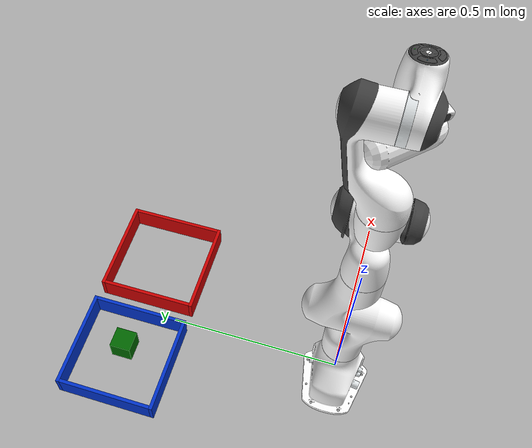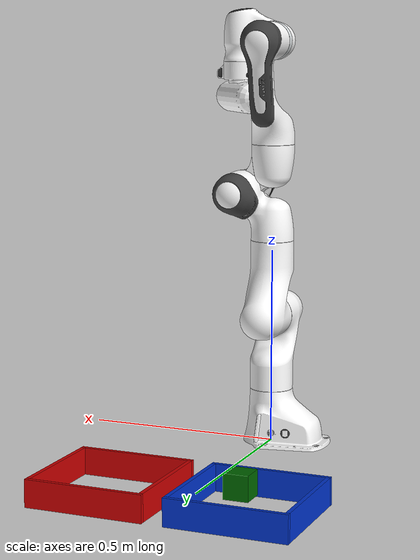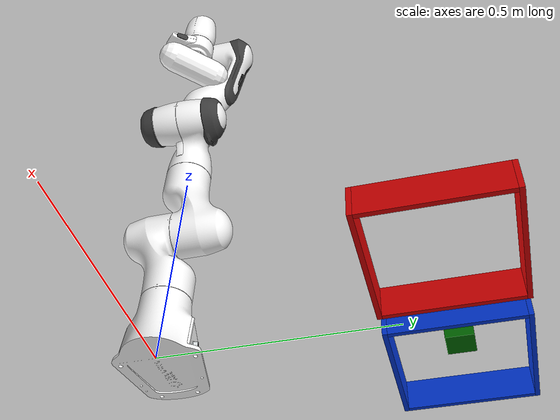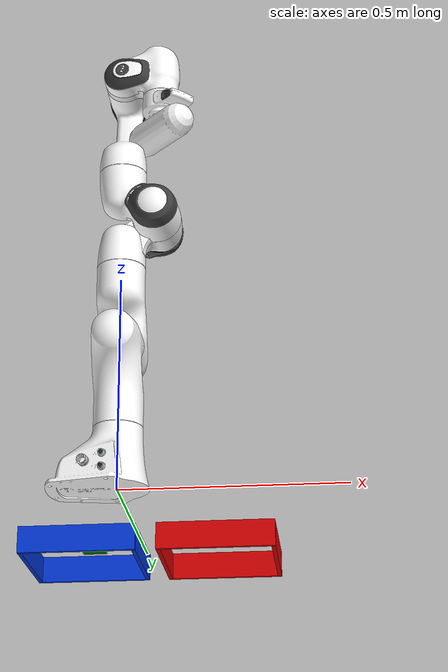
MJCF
<!-- Credit: adapted from Mujoco Menagerie -->
<mujoco model="panda">
  <compiler angle="radian" meshdir="franka_emika_panda/assets" autolimits="true"/>

  <option integrator="implicitfast" impratio="10"/>

  <default>
    <default class="panda">
      <joint armature="0.1" damping="5" axis="0 0 1" range="-2.8973 2.8973"/>
      <general dyntype="none" biastype="affine" ctrlrange="-2.8973 2.8973" forcerange="-87 87"/>
      <default class="finger">
        <joint axis="0 1 0" type="slide" range="0 0.05"/>
      </default>

      <default class="visual">
        <geom type="mesh" contype="0" conaffinity="0" group="2"/>
      </default>
      <default class="collision">
        <geom type="mesh" group="3"/>
        <default class="finger_collision">
          <geom type="box" size="0.015 0.005 0.04" pos="0 0.0055 0.035" friction="10 0.005 0.0001"/>
        </default>
      </default>
    </default>
  </default>

  <asset>
    <!-- Visual meshes -->
    <mesh file="link0_0.obj"/>
    <mesh file="link0_1.obj"/>
    <mesh file="link0_2.obj"/>
    <mesh file="link0_3.obj"/>
    <mesh file="link0_4.obj"/>
    <mesh file="link0_5.obj"/>
    <mesh file="link0_7.obj"/>
    <mesh file="link0_8.obj"/>
    <mesh file="link0_9.obj"/>
    <mesh file="link0_10.obj"/>
    <mesh file="link0_11.obj"/>
    <mesh file="link1.obj"/>
    <mesh file="link2.obj"/>
    <mesh file="link3_0.obj"/>
    <mesh file="link3_1.obj"/>
    <mesh file="link3_2.obj"/>
    <mesh file="link3_3.obj"/>
    <mesh file="link4_0.obj"/>
    <mesh file="link4_1.obj"/>
    <mesh file="link4_2.obj"/>
    <mesh file="link4_3.obj"/>
    <mesh file="link5_0.obj"/>
    <mesh file="link5_1.obj"/>
    <mesh file="link5_2.obj"/>
    <mesh file="link6_0.obj"/>
    <mesh file="link6_1.obj"/>
    <mesh file="link6_2.obj"/>
    <mesh file="link6_3.obj"/>
    <mesh file="link6_4.obj"/>
    <mesh file="link6_5.obj"/>
    <mesh file="link6_6.obj"/>
    <mesh file="link6_7.obj"/>
    <mesh file="link6_8.obj"/>
    <mesh file="link6_9.obj"/>
    <mesh file="link6_10.obj"/>
    <mesh file="link6_11.obj"/>
    <mesh file="link6_12.obj"/>
    <mesh file="link6_13.obj"/>
    <mesh file="link6_14.obj"/>
    <mesh file="link6_15.obj"/>
    <mesh file="link6_16.obj"/>
    <mesh file="link7_0.obj"/>
    <mesh file="link7_1.obj"/>
    <mesh file="link7_2.obj"/>
    <mesh file="link7_3.obj"/>
    <mesh file="link7_4.obj"/>
    <mesh file="link7_5.obj"/>
    <mesh file="link7_6.obj"/>
    <mesh file="link7_7.obj"/>
    <mesh file="hand_0.obj"/>
    <mesh file="hand_1.obj"/>
    <mesh file="hand_2.obj"/>
    <mesh file="hand_3.obj"/>
    <mesh file="hand_4.obj"/>
    <mesh file="finger_0.obj"/>
    <mesh file="finger_1.obj"/>
  </asset>

  <worldbody>
    <light name="top" pos="0 0 2" mode="trackcom"/>
    <body name="link0" childclass="panda">
      <geom mesh="link0_0" rgba="0.901961 0.921569 0.929412 1" class="visual"/>
      <geom mesh="link0_1" rgba="0.25 0.25 0.25 1" class="visual"/>
      <geom mesh="link0_2" rgba="0.901961 0.921569 0.929412 1" class="visual"/>
      <geom mesh="link0_3" rgba="0.25 0.25 0.25 1" class="visual"/>
      <geom mesh="link0_4" rgba="0.901961 0.921569 0.929412 1" class="visual"/>
      <geom mesh="link0_5" rgba="0.25 0.25 0.25 1" class="visual"/>
      <geom mesh="link0_7" rgba="1 1 1 1" class="visual"/>
      <geom mesh="link0_8" rgba="1 1 1 1" class="visual"/>
      <geom mesh="link0_9" rgba="0.25 0.25 0.25 1" class="visual"/>
      <geom mesh="link0_10" rgba="0.901961 0.921569 0.929412 1" class="visual"/>
      <geom mesh="link0_11" rgba="1 1 1 1" class="visual"/>
      <body name="link1" pos="0 0 0.333">
        <inertial mass="4.970684" pos="0.003875 0.002081 -0.04762"
          fullinertia="0.70337 0.70661 0.0091170 -0.00013900 0.0067720 0.019169"/>
        <joint name="joint1"/>
        <geom rgba="1 1 1 1" mesh="link1" class="visual"/>
        <body name="link2" quat="1 -1 0 0">
          <inertial mass="0.646926" pos="-0.003141 -0.02872 0.003495"
            fullinertia="0.0079620 2.8110e-2 2.5995e-2 -3.925e-3 1.0254e-2 7.04e-4"/>
          <joint name="joint2" range="-1.7628 1.7628"/>
          <geom rgba="1 1 1 1" mesh="link2" class="visual"/>
          <body name="link3" pos="0 -0.316 0" quat="1 1 0 0">
            <joint name="joint3"/>
            <inertial mass="3.228604" pos="2.7518e-2 3.9252e-2 -6.6502e-2"
              fullinertia="3.7242e-2 3.6155e-2 1.083e-2 -4.761e-3 -1.1396e-2 -1.2805e-2"/>
            <geom mesh="link3_0" rgba="1 1 1 1" class="visual"/>
            <geom mesh="link3_1" rgba="1 1 1 1" class="visual"/>
            <geom mesh="link3_2" rgba="1 1 1 1" class="visual"/>
            <geom mesh="link3_3" rgba="0.25 0.25 0.25 1" class="visual"/>
            <body name="link4" pos="0.0825 0 0" quat="1 1 0 0">
              <inertial mass="3.587895" pos="-5.317e-2 1.04419e-1 2.7454e-2"
                fullinertia="2.5853e-2 1.9552e-2 2.8323e-2 7.796e-3 -1.332e-3 8.641e-3"/>
              <joint name="joint4" range="-3.0718 -0.0698"/>
              <geom mesh="link4_0" rgba="1 1 1 1" class="visual"/>
              <geom mesh="link4_1" rgba="1 1 1 1" class="visual"/>
              <geom mesh="link4_2" rgba="0.25 0.25 0.25 1" class="visual"/>
              <geom mesh="link4_3" rgba="1 1 1 1" class="visual"/>
              <body name="link5" pos="-0.0825 0.384 0" quat="1 -1 0 0">
                <inertial mass="1.225946" pos="-1.1953e-2 4.1065e-2 -3.8437e-2"
                  fullinertia="3.5549e-2 2.9474e-2 8.627e-3 -2.117e-3 -4.037e-3 2.29e-4"/>
                <joint name="joint5"/>
                <geom mesh="link5_0" rgba="0.25 0.25 0.25 1" class="visual"/>
                <geom mesh="link5_1" rgba="1 1 1 1" class="visual"/>
                <geom mesh="link5_2" rgba="1 1 1 1" class="visual"/>
                <body name="link6" quat="1 1 0 0">
                  <inertial mass="1.666555" pos="6.0149e-2 -1.4117e-2 -1.0517e-2"
                    fullinertia="1.964e-3 4.354e-3 5.433e-3 1.09e-4 -1.158e-3 3.41e-4"/>
                  <joint name="joint6" range="-0.0175 3.7525"/>
                  <geom mesh="link6_0" rgba="0.901961 0.921569 0.929412 1" class="visual"/>
                  <geom mesh="link6_1" rgba="1 1 1 1" class="visual"/>
                  <geom mesh="link6_2" rgba="0.25 0.25 0.25 1" class="visual"/>
                  <geom mesh="link6_3" rgba="1 1 1 1" class="visual"/>
                  <geom mesh="link6_4" rgba="1 1 1 1" class="visual"/>
                  <geom mesh="link6_5" rgba="1 1 1 1" class="visual"/>
                  <geom mesh="link6_6" rgba="1 1 1 1" class="visual"/>
                  <geom mesh="link6_7" rgba="0.039216 0.541176 0.780392 1" class="visual"/>
                  <geom mesh="link6_8" rgba="0.039216 0.541176 0.780392 1" class="visual"/>
                  <geom mesh="link6_9" rgba="0.25 0.25 0.25 1" class="visual"/>
                  <geom mesh="link6_10" rgba="0.25 0.25 0.25 1" class="visual"/>
                  <geom mesh="link6_11" rgba="1 1 1 1" class="visual"/>
                  <geom mesh="link6_12" rgba="0 1 0 1" class="visual"/>
                  <geom mesh="link6_13" rgba="1 1 1 1" class="visual"/>
                  <geom mesh="link6_14" rgba="0.25 0.25 0.25 1" class="visual"/>
                  <geom mesh="link6_15" rgba="0.25 0.25 0.25 1" class="visual"/>
                  <geom mesh="link6_16" rgba="1 1 1 1" class="visual"/>
                  <body name="link7" pos="0.088 0 0" quat="1 1 0 0">
                    <inertial mass="7.35522e-01" pos="1.0517e-2 -4.252e-3 6.1597e-2"
                      fullinertia="1.2516e-2 1.0027e-2 4.815e-3 -4.28e-4 -1.196e-3 -7.41e-4"/>
                    <joint name="joint7"/>
                    <geom mesh="link7_0" rgba="1 1 1 1" class="visual"/>
                    <geom mesh="link7_1" rgba="0.25 0.25 0.25 1" class="visual"/>
                    <geom mesh="link7_2" rgba="0.25 0.25 0.25 1" class="visual"/>
                    <geom mesh="link7_3" rgba="0.25 0.25 0.25 1" class="visual"/>
                    <geom mesh="link7_4" rgba="0.25 0.25 0.25 1" class="visual"/>
                    <geom mesh="link7_5" rgba="0.25 0.25 0.25 1" class="visual"/>
                    <geom mesh="link7_6" rgba="0.25 0.25 0.25 1" class="visual"/>
                    <geom mesh="link7_7" rgba="1 1 1 1" class="visual"/>
                    <body name="hand" pos="0 0 0.107" quat="0.9238795 0 0 -0.3826834">
                      <geom name="hand_geom" rgba="1 1 1 1" type="capsule" size="0.04 0.06" pos="0 0 0.035" quat="1 1 0 0" contype="0" conaffinity="0"/>
                      <body name="left_finger" pos="0 0 0.0584">
                        <inertial mass="0.015" pos="0 0 0" diaginertia="2.375e-6 2.375e-6 7.5e-7"/>
                        <joint name="finger_joint1" class="finger"/>
                          <geom name="left_finger_geom" rgba="0.25 0.25 0.25 1" class="finger_collision" contype="0" conaffinity="0"/>
                      </body>
                      <body name="right_finger" pos="0 0 0.0584" quat="0 0 0 1">
                        <inertial mass="0.015" pos="0 0 0" diaginertia="2.375e-6 2.375e-6 7.5e-7"/>
                        <joint name="finger_joint2" class="finger"/>
                          <geom name="right_finger_geom" rgba="0.25 0.25 0.25 1" class="finger_collision" contype="0" conaffinity="0"/>
                      </body>
                    </body>
                  </body>
                </body>
              </body>
            </body>
          </body>
        </body>
      </body>
    </body>

    <body name="binA" pos="-0.17 0.6 0">
      <geom name="binA1" pos="0 -0.14 0.033" size="0.145 0.005 0.033" type="box" rgba="0 0.2 0.8 1" contype="0" conaffinity="0"/>
      <geom name="binA2" pos="0 0.14 0.033" size="0.145 0.005 0.033" type="box" rgba="0 0.2 0.8 1" contype="0" conaffinity="0"/>
      <geom name="binA3" pos="0.14 0 0.033" size="0.005 0.135 0.033" type="box" rgba="0 0.2 0.8 1" contype="0" conaffinity="0"/>
      <geom name="binA4" pos="-0.14 0 0.033" size="0.005 0.135 0.033" type="box" rgba="0 0.2 0.8 1" contype="0" conaffinity="0"/>
    </body>
    <body name="binB" pos="0.17 0.6 0">
      <geom name="binB1" pos="0 -0.14 0.033" size="0.145 0.005 0.033" type="box" rgba="0.8 0 0 1" contype="0" conaffinity="0"/>
      <geom name="binB2" pos="0 0.14 0.033" size="0.145 0.005 0.033" type="box" rgba="0.8 0 0 1" contype="0" conaffinity="0"/>
      <geom name="binB3" pos="0.14 0 0.033" size="0.005 0.135 0.033" type="box" rgba="0.8 0 0 1" contype="0" conaffinity="0"/>
      <geom name="binB4" pos="-0.14 0 0.033" size="0.005 0.135 0.033" type="box" rgba="0.8 0 0 1" contype="0" conaffinity="0"/>
    </body>

    <body name="cube" pos="-0.15 0.6 0.07">
      <freejoint/>
      <geom name="cube_geom" size="0.03 0.03 0.03" type="box" rgba="0 0.4 0 1" contype="0" conaffinity="0"/>
    </body>

    <body name="goal_marker" pos="-0.15 0.6 0.07" gravcomp="1">
      <freejoint/>
      <geom name="goal_marker_geom" size="0.03 0.03 0.03" type="box" rgba="0.3 1 0.3 1" contype="0" conaffinity="0"/>
    </body>

    <body name="tablelink" pos="0 .2 0">
        <geom name="table_geom" group="4" pos="0.0 0.0 0.0" size="2.8 2.4 0.1" type="plane" mass="10" friction="0.2 0.005 0.0001" contype="0" conaffinity="0"/>
    </body>
  </worldbody>

  <equality>
    <joint joint1="finger_joint1" joint2="finger_joint2" solimp="0.95 0.99 0.001" solref="0.005 1"/>
  </equality>

  <contact>
    <pair geom1="cube_geom" geom2="table_geom"/>
    <pair geom1="cube_geom" geom2="binA1"/>
    <pair geom1="cube_geom" geom2="binA2"/>
    <pair geom1="cube_geom" geom2="binA3"/>
    <pair geom1="cube_geom" geom2="binA4"/>
    <pair geom1="cube_geom" geom2="binB1"/>
    <pair geom1="cube_geom" geom2="binB2"/>
    <pair geom1="cube_geom" geom2="binB3"/>
    <pair geom1="cube_geom" geom2="binB4"/>
    <pair geom1="cube_geom" geom2="hand_geom"/>
    <pair geom1="cube_geom" geom2="left_finger_geom"/>
    <pair geom1="cube_geom" geom2="right_finger_geom"/>

    <pair geom1="table_geom" geom2="hand_geom"/>
    <pair geom1="table_geom" geom2="left_finger_geom"/>
    <pair geom1="table_geom" geom2="right_finger_geom"/>

    <!-- The finger and bin collisions aren't being registered that well so fingers will ghost through the bin if enough force is applied and the fingers are fast enough. -->
    <pair geom1="left_finger_geom" geom2="binA1"/>
    <pair geom1="left_finger_geom" geom2="binA2"/>
    <pair geom1="left_finger_geom" geom2="binA3"/>
    <pair geom1="left_finger_geom" geom2="binA4"/>
    <pair geom1="left_finger_geom" geom2="binB1"/>
    <pair geom1="left_finger_geom" geom2="binB2"/>
    <pair geom1="left_finger_geom" geom2="binB3"/>
    <pair geom1="left_finger_geom" geom2="binB4"/>
    <pair geom1="right_finger_geom" geom2="binA1"/>
    <pair geom1="right_finger_geom" geom2="binA2"/>
    <pair geom1="right_finger_geom" geom2="binA3"/>
    <pair geom1="right_finger_geom" geom2="binA4"/>
    <pair geom1="right_finger_geom" geom2="binB1"/>
    <pair geom1="right_finger_geom" geom2="binB2"/>
    <pair geom1="right_finger_geom" geom2="binB3"/>
    <pair geom1="right_finger_geom" geom2="binB4"/>
    <pair geom1="hand_geom" geom2="binA1"/>
    <pair geom1="hand_geom" geom2="binA2"/>
    <pair geom1="hand_geom" geom2="binA3"/>
    <pair geom1="hand_geom" geom2="binA4"/>
    <pair geom1="hand_geom" geom2="binB1"/>
    <pair geom1="hand_geom" geom2="binB2"/>
    <pair geom1="hand_geom" geom2="binB3"/>
    <pair geom1="hand_geom" geom2="binB4"/>

    <pair geom1="left_finger_geom" geom2="right_finger_geom"/>
  </contact>

  <actuator>
    <general class="panda" name="actuator1" joint="joint1" gainprm="4500" biasprm="0 -4500 -450"/>
    <general class="panda" name="actuator2" joint="joint2" gainprm="4500" biasprm="0 -4500 -450"
      ctrlrange="-1.7628 1.7628"/>
    <general class="panda" name="actuator3" joint="joint3" gainprm="2000" biasprm="0 -3500 -350"/>
    <general class="panda" name="actuator4" joint="joint4" gainprm="2000" biasprm="0 -3500 -350"
      ctrlrange="-3.0718 -0.0698"/>
    <general class="panda" name="actuator5" joint="joint5" gainprm="1000" biasprm="0 -2000 -200" forcerange="-12 12"/>
    <general class="panda" name="actuator6" joint="joint6" gainprm="1000" biasprm="0 -2000 -200" forcerange="-12 12"
      ctrlrange="-0.0175 3.7525"/>
    <general class="panda" name="actuator7" joint="joint7" gainprm="1000" biasprm="0 -2000 -200" forcerange="-12 12"/>
    <!-- Remap original ctrlrange (0, 0.08) to (0, 255): 0.08 * 500 / 255 = 0.15686 -->
    <general class="panda" name="actuator8" joint="finger_joint1" forcerange="-500 500" ctrlrange="0 255"
      gainprm="0.09804 0 0" biasprm="0 -500 -50"/>
    <general class="panda" name="actuator9" joint="finger_joint2" forcerange="-500 500" ctrlrange="0 255"
      gainprm="0.09804 0 0" biasprm="0 -500 -50"/>
  </actuator>
</mujoco>
